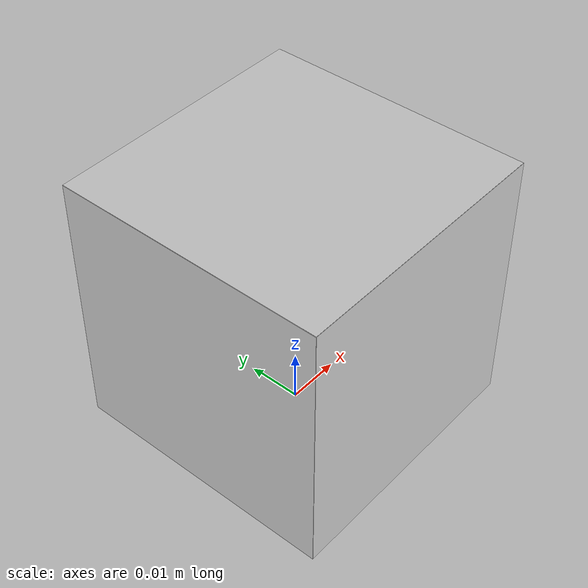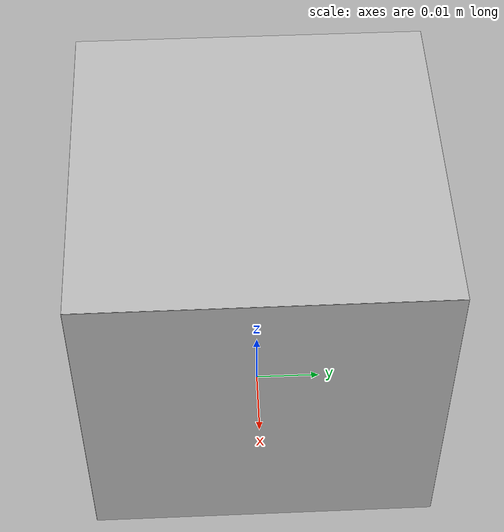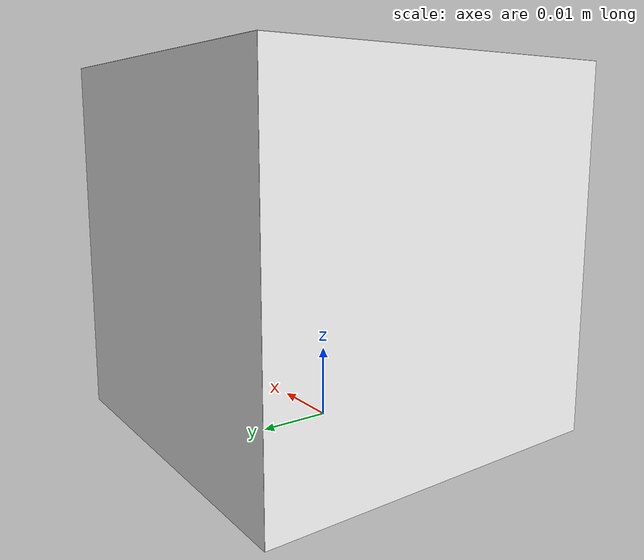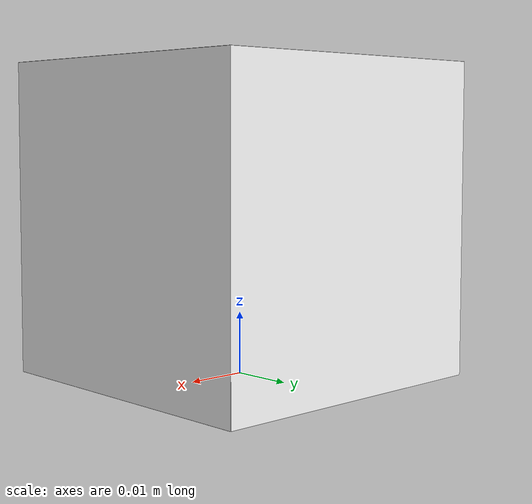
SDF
<?xml version='1.0'?>
<sdf version='1.6'>
  <model name='aruco_visual_marker_0'>

    <allow_auto_disable>true</allow_auto_disable>

    <link name='marker'>
      <pose>0 0 0.025 0 0 0</pose>

      <!-- ▶ Inertial (for physics simulation) -->
      <inertial>
        <mass>0.05</mass>
        <inertia>
          <ixx>5.208e-06</ixx>
          <iyy>5.208e-06</iyy>
          <izz>5.208e-06</izz>
          <ixy>0.0</ixy>
          <ixz>0.0</ixz>
          <iyz>0.0</iyz>
        </inertia>
        <pose>0 0 0 0 0 0</pose>
      </inertial>

      <!-- ▶ Top face with ArUco marker -->
      <visual name='face_top'>
        <pose>0 0 0.025 0 0 0</pose>
        <geometry>
          <box><size>0.05 0.05 0.0001</size></box>
        </geometry>
        <material>
          <script>
            <uri>model://aruco_visual_marker_0/materials/scripts</uri>
            <uri>model://aruco_visual_marker_0/materials/textures</uri>
            <name>ArucoVisualMarker0/Marker</name>
          </script>
        </material>
      </visual>

      <!-- ▶ Other 5 faces -->
      <visual name="face_bottom">
        <pose>0 0 -0.025 0 0 0</pose>
        <geometry><box><size>0.05 0.05 0.0001</size></box></geometry>
        <material><script><uri>file://media/materials/scripts/gazebo.material</uri><name>Gazebo/White</name></script></material>
      </visual>

      <visual name="face_front">
        <pose>0 -0.025 0 1.5708 0 0</pose>
        <geometry><box><size>0.05 0.05 0.0001</size></box></geometry>
        <material><script><uri>file://media/materials/scripts/gazebo.material</uri><name>Gazebo/White</name></script></material>
      </visual>

      <visual name="face_back">
        <pose>0 0.025 0 -1.5708 0 0</pose>
        <geometry><box><size>0.05 0.05 0.0001</size></box></geometry>
        <material><script><uri>file://media/materials/scripts/gazebo.material</uri><name>Gazebo/White</name></script></material>
      </visual>

      <visual name="face_left">
        <pose>-0.025 0 0 0 1.5708 0</pose>
        <geometry><box><size>0.05 0.05 0.0001</size></box></geometry>
        <material><script><uri>file://media/materials/scripts/gazebo.material</uri><name>Gazebo/White</name></script></material>
      </visual>

      <visual name="face_right">
        <pose>0.025 0 0 0 -1.5708 0</pose>
        <geometry><box><size>0.05 0.05 0.0001</size></box></geometry>
        <material><script><uri>file://media/materials/scripts/gazebo.material</uri><name>Gazebo/White</name></script></material>
      </visual>

      <!-- ▶ Collision box -->
      <collision name='collision'>
        <geometry>
          <box><size>0.05 0.05 0.05</size></box>
        </geometry>
      </collision>
    </link>

  </model>
</sdf>
